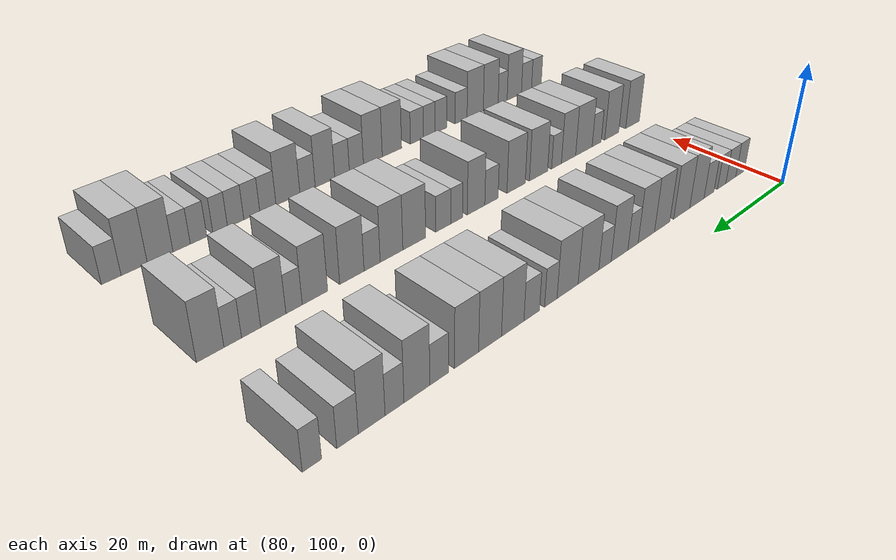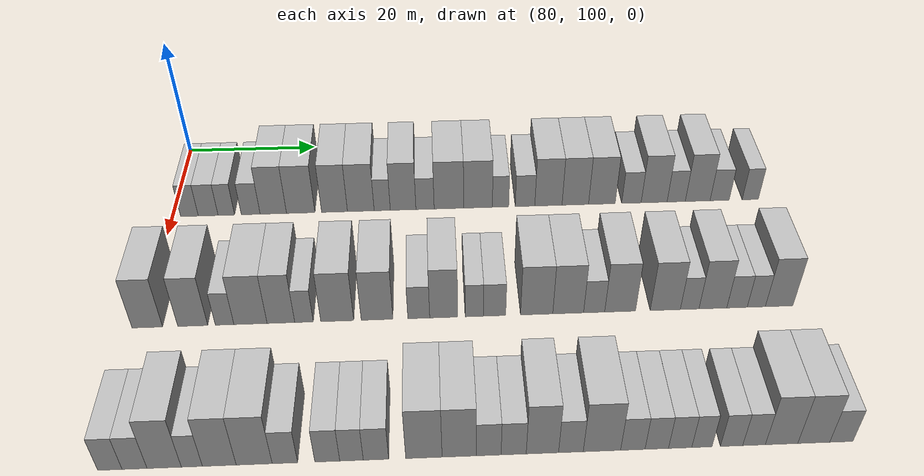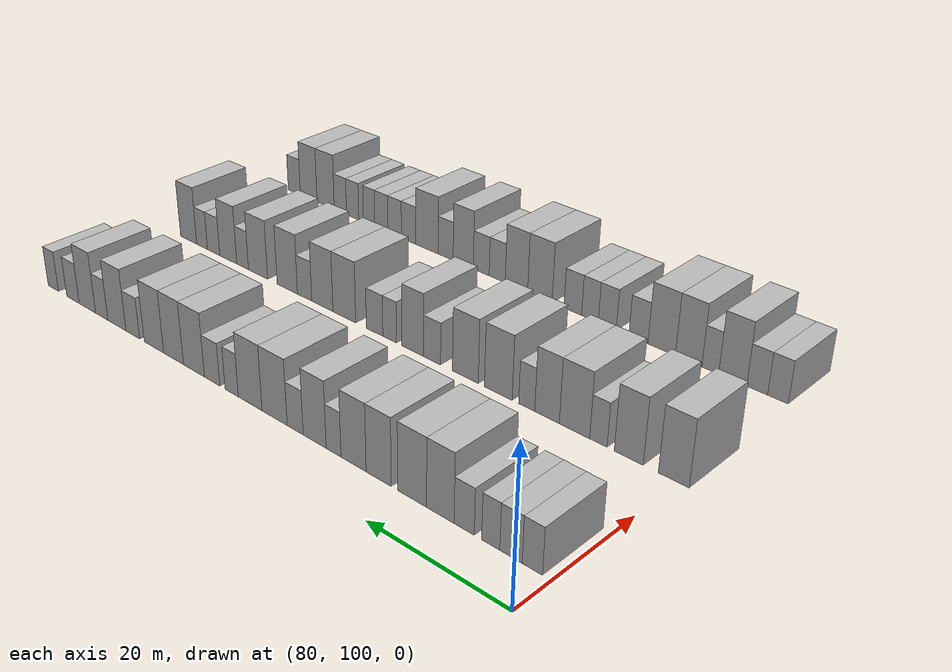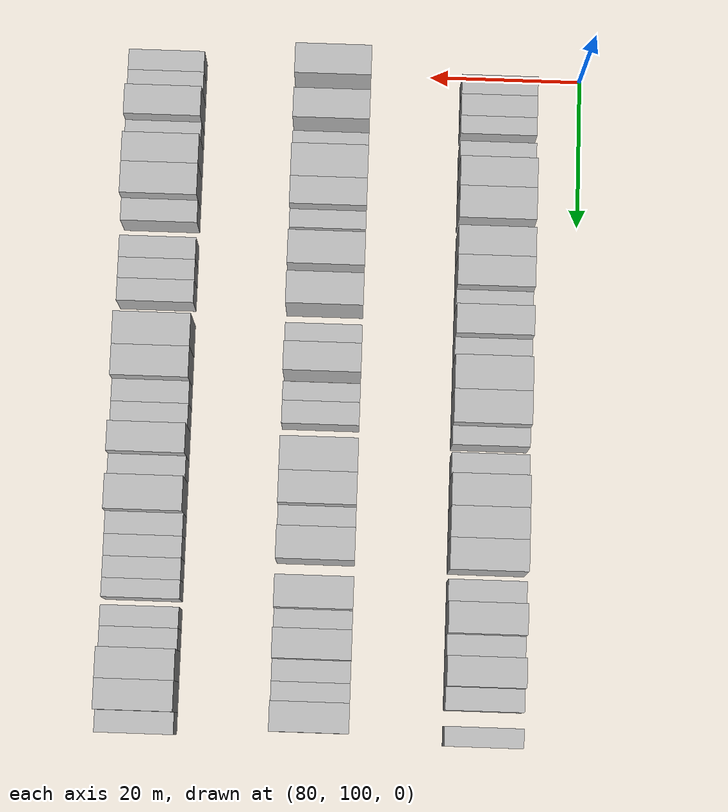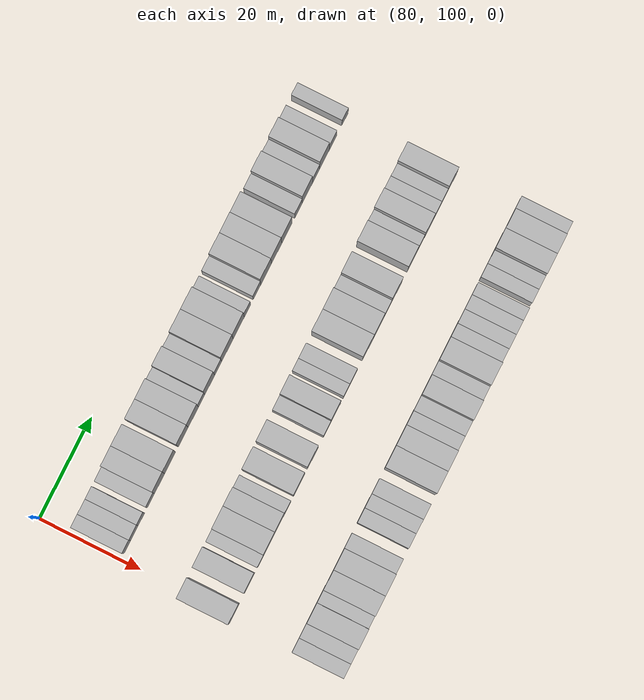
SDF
<sdf version="1.6">
 <world name="default">
  <model name="building_700">
   <static>1</static>
   <pose>91.0000 102.5104 0 0.000000 0.000000 0.000000</pose>
   <link name="link">
    <pose>0 0 3.00 0 0 0</pose>
    <collision name="collision"><geometry><box><size>10.0000 2.6160 6.0000</size></box></geometry></collision>
    <visual name="visual">
     <cast_shadows>0</cast_shadows>
     <geometry><box><size>10.0000 2.6160 6.0000</size></box></geometry>
     <material>
      <script>
       <uri>model://HANNAS_wall/materials/scripts</uri>
       <uri>model://HANNAS_wall/materials/textures</uri>
       <name>vrc/HANNAS_wall</name>
      </script>
     </material>
    </visual>
   </link>
  </model>
  <model name="building_701">
   <static>1</static>
   <pose>91.0000 105.2872 0 0.000000 0.000000 0.000000</pose>
   <link name="link">
    <pose>0 0 3.00 0 0 0</pose>
    <collision name="collision"><geometry><box><size>10.0000 2.9376 6.0000</size></box></geometry></collision>
    <visual name="visual">
     <cast_shadows>0</cast_shadows>
     <geometry><box><size>10.0000 2.9376 6.0000</size></box></geometry>
     <material>
      <script>
       <uri>model://HANNAS_wall/materials/scripts</uri>
       <uri>model://HANNAS_wall/materials/textures</uri>
       <name>vrc/HANNAS_wall</name>
      </script>
     </material>
    </visual>
   </link>
  </model>
  <model name="building_702">
   <static>1</static>
   <pose>91.0000 107.9798 0 0.000000 0.000000 0.000000</pose>
   <link name="link">
    <pose>0 0 3.00 0 0 0</pose>
    <collision name="collision"><geometry><box><size>10.0000 2.4476 6.0000</size></box></geometry></collision>
    <visual name="visual">
     <cast_shadows>0</cast_shadows>
     <geometry><box><size>10.0000 2.4476 6.0000</size></box></geometry>
     <material>
      <script>
       <uri>model://HANNAS_wall/materials/scripts</uri>
       <uri>model://HANNAS_wall/materials/textures</uri>
       <name>vrc/HANNAS_wall</name>
      </script>
     </material>
    </visual>
   </link>
  </model>
  <model name="building_703">
   <static>1</static>
   <pose>91.0000 111.6067 0 0.000000 0.000000 0.000000</pose>
   <link name="link">
    <pose>0 0 3.00 0 0 0</pose>
    <collision name="collision"><geometry><box><size>10.0000 2.8062 6.0000</size></box></geometry></collision>
    <visual name="visual">
     <cast_shadows>0</cast_shadows>
     <geometry><box><size>10.0000 2.8062 6.0000</size></box></geometry>
     <material>
      <script>
       <uri>model://HANNAS_wall/materials/scripts</uri>
       <uri>model://HANNAS_wall/materials/textures</uri>
       <name>vrc/HANNAS_wall</name>
      </script>
     </material>
    </visual>
   </link>
  </model>
  <model name="building_704">
   <static>1</static>
   <pose>91.0000 114.9770 0 0.000000 0.000000 0.000000</pose>
   <link name="link">
    <pose>0 0 4.50 0 0 0</pose>
    <collision name="collision"><geometry><box><size>10.0000 3.9344 9.0000</size></box></geometry></collision>
    <visual name="visual">
     <cast_shadows>0</cast_shadows>
     <geometry><box><size>10.0000 3.9344 9.0000</size></box></geometry>
     <material>
      <script>
       <uri>model://HANNAS_wall/materials/scripts</uri>
       <uri>model://HANNAS_wall/materials/textures</uri>
       <name>vrc/HANNAS_wall</name>
      </script>
     </material>
    </visual>
   </link>
  </model>
  <model name="building_705">
   <static>1</static>
   <pose>91.0000 119.0649 0 0.000000 0.000000 0.000000</pose>
   <link name="link">
    <pose>0 0 4.50 0 0 0</pose>
    <collision name="collision"><geometry><box><size>10.0000 4.2413 9.0000</size></box></geometry></collision>
    <visual name="visual">
     <cast_shadows>0</cast_shadows>
     <geometry><box><size>10.0000 4.2413 9.0000</size></box></geometry>
     <material>
      <script>
       <uri>model://HANNAS_wall/materials/scripts</uri>
       <uri>model://HANNAS_wall/materials/textures</uri>
       <name>vrc/HANNAS_wall</name>
      </script>
     </material>
    </visual>
   </link>
  </model>
  <model name="building_706">
   <static>1</static>
   <pose>91.0000 124.1205 0 0.000000 0.000000 0.000000</pose>
   <link name="link">
    <pose>0 0 4.50 0 0 0</pose>
    <collision name="collision"><geometry><box><size>10.0000 3.8699 9.0000</size></box></geometry></collision>
    <visual name="visual">
     <cast_shadows>0</cast_shadows>
     <geometry><box><size>10.0000 3.8699 9.0000</size></box></geometry>
     <material>
      <script>
       <uri>model://HANNAS_wall/materials/scripts</uri>
       <uri>model://HANNAS_wall/materials/textures</uri>
       <name>vrc/HANNAS_wall</name>
      </script>
     </material>
    </visual>
   </link>
  </model>
  <model name="building_707">
   <static>1</static>
   <pose>91.0000 128.0559 0 0.000000 0.000000 0.000000</pose>
   <link name="link">
    <pose>0 0 4.50 0 0 0</pose>
    <collision name="collision"><geometry><box><size>10.0000 4.0009 9.0000</size></box></geometry></collision>
    <visual name="visual">
     <cast_shadows>0</cast_shadows>
     <geometry><box><size>10.0000 4.0009 9.0000</size></box></geometry>
     <material>
      <script>
       <uri>model://HANNAS_wall/materials/scripts</uri>
       <uri>model://HANNAS_wall/materials/textures</uri>
       <name>vrc/HANNAS_wall</name>
      </script>
     </material>
    </visual>
   </link>
  </model>
  <model name="building_708">
   <static>1</static>
   <pose>91.0000 131.2698 0 0.000000 0.000000 0.000000</pose>
   <link name="link">
    <pose>0 0 3.00 0 0 0</pose>
    <collision name="collision"><geometry><box><size>10.0000 2.4270 6.0000</size></box></geometry></collision>
    <visual name="visual">
     <cast_shadows>0</cast_shadows>
     <geometry><box><size>10.0000 2.4270 6.0000</size></box></geometry>
     <material>
      <script>
       <uri>model://HANNAS_wall/materials/scripts</uri>
       <uri>model://HANNAS_wall/materials/textures</uri>
       <name>vrc/HANNAS_wall</name>
      </script>
     </material>
    </visual>
   </link>
  </model>
  <model name="building_709">
   <static>1</static>
   <pose>91.0000 134.4091 0 0.000000 0.000000 0.000000</pose>
   <link name="link">
    <pose>0 0 4.50 0 0 0</pose>
    <collision name="collision"><geometry><box><size>10.0000 3.8515 9.0000</size></box></geometry></collision>
    <visual name="visual">
     <cast_shadows>0</cast_shadows>
     <geometry><box><size>10.0000 3.8515 9.0000</size></box></geometry>
     <material>
      <script>
       <uri>model://HANNAS_wall/materials/scripts</uri>
       <uri>model://HANNAS_wall/materials/textures</uri>
       <name>vrc/HANNAS_wall</name>
      </script>
     </material>
    </visual>
   </link>
  </model>
  <model name="building_710">
   <static>1</static>
   <pose>91.0000 137.7074 0 0.000000 0.000000 0.000000</pose>
   <link name="link">
    <pose>0 0 3.00 0 0 0</pose>
    <collision name="collision"><geometry><box><size>10.0000 2.7451 6.0000</size></box></geometry></collision>
    <visual name="visual">
     <cast_shadows>0</cast_shadows>
     <geometry><box><size>10.0000 2.7451 6.0000</size></box></geometry>
     <material>
      <script>
       <uri>model://HANNAS_wall/materials/scripts</uri>
       <uri>model://HANNAS_wall/materials/textures</uri>
       <name>vrc/HANNAS_wall</name>
      </script>
     </material>
    </visual>
   </link>
  </model>
  <model name="building_711">
   <static>1</static>
   <pose>91.0000 141.3026 0 0.000000 0.000000 0.000000</pose>
   <link name="link">
    <pose>0 0 4.50 0 0 0</pose>
    <collision name="collision"><geometry><box><size>10.0000 4.4453 9.0000</size></box></geometry></collision>
    <visual name="visual">
     <cast_shadows>0</cast_shadows>
     <geometry><box><size>10.0000 4.4453 9.0000</size></box></geometry>
     <material>
      <script>
       <uri>model://HANNAS_wall/materials/scripts</uri>
       <uri>model://HANNAS_wall/materials/textures</uri>
       <name>vrc/HANNAS_wall</name>
      </script>
     </material>
    </visual>
   </link>
  </model>
  <model name="building_712">
   <static>1</static>
   <pose>91.0000 145.6938 0 0.000000 0.000000 0.000000</pose>
   <link name="link">
    <pose>0 0 4.50 0 0 0</pose>
    <collision name="collision"><geometry><box><size>10.0000 4.3371 9.0000</size></box></geometry></collision>
    <visual name="visual">
     <cast_shadows>0</cast_shadows>
     <geometry><box><size>10.0000 4.3371 9.0000</size></box></geometry>
     <material>
      <script>
       <uri>model://HANNAS_wall/materials/scripts</uri>
       <uri>model://HANNAS_wall/materials/textures</uri>
       <name>vrc/HANNAS_wall</name>
      </script>
     </material>
    </visual>
   </link>
  </model>
  <model name="building_713">
   <static>1</static>
   <pose>91.0000 149.0983 0 0.000000 0.000000 0.000000</pose>
   <link name="link">
    <pose>0 0 3.00 0 0 0</pose>
    <collision name="collision"><geometry><box><size>10.0000 2.4720 6.0000</size></box></geometry></collision>
    <visual name="visual">
     <cast_shadows>0</cast_shadows>
     <geometry><box><size>10.0000 2.4720 6.0000</size></box></geometry>
     <material>
      <script>
       <uri>model://HANNAS_wall/materials/scripts</uri>
       <uri>model://HANNAS_wall/materials/textures</uri>
       <name>vrc/HANNAS_wall</name>
      </script>
     </material>
    </visual>
   </link>
  </model>
  <model name="building_714">
   <static>1</static>
   <pose>91.0000 152.8132 0 0.000000 0.000000 0.000000</pose>
   <link name="link">
    <pose>0 0 3.00 0 0 0</pose>
    <collision name="collision"><geometry><box><size>10.0000 2.9578 6.0000</size></box></geometry></collision>
    <visual name="visual">
     <cast_shadows>0</cast_shadows>
     <geometry><box><size>10.0000 2.9578 6.0000</size></box></geometry>
     <material>
      <script>
       <uri>model://HANNAS_wall/materials/scripts</uri>
       <uri>model://HANNAS_wall/materials/textures</uri>
       <name>vrc/HANNAS_wall</name>
      </script>
     </material>
    </visual>
   </link>
  </model>
  <model name="building_715">
   <static>1</static>
   <pose>91.0000 156.3611 0 0.000000 0.000000 0.000000</pose>
   <link name="link">
    <pose>0 0 4.50 0 0 0</pose>
    <collision name="collision"><geometry><box><size>10.0000 4.1379 9.0000</size></box></geometry></collision>
    <visual name="visual">
     <cast_shadows>0</cast_shadows>
     <geometry><box><size>10.0000 4.1379 9.0000</size></box></geometry>
     <material>
      <script>
       <uri>model://HANNAS_wall/materials/scripts</uri>
       <uri>model://HANNAS_wall/materials/textures</uri>
       <name>vrc/HANNAS_wall</name>
      </script>
     </material>
    </visual>
   </link>
  </model>
  <model name="building_716">
   <static>1</static>
   <pose>91.0000 160.4468 0 0.000000 0.000000 0.000000</pose>
   <link name="link">
    <pose>0 0 4.50 0 0 0</pose>
    <collision name="collision"><geometry><box><size>10.0000 4.0335 9.0000</size></box></geometry></collision>
    <visual name="visual">
     <cast_shadows>0</cast_shadows>
     <geometry><box><size>10.0000 4.0335 9.0000</size></box></geometry>
     <material>
      <script>
       <uri>model://HANNAS_wall/materials/scripts</uri>
       <uri>model://HANNAS_wall/materials/textures</uri>
       <name>vrc/HANNAS_wall</name>
      </script>
     </material>
    </visual>
   </link>
  </model>
  <model name="building_717">
   <static>1</static>
   <pose>91.0000 164.4936 0 0.000000 0.000000 0.000000</pose>
   <link name="link">
    <pose>0 0 4.50 0 0 0</pose>
    <collision name="collision"><geometry><box><size>10.0000 4.0601 9.0000</size></box></geometry></collision>
    <visual name="visual">
     <cast_shadows>0</cast_shadows>
     <geometry><box><size>10.0000 4.0601 9.0000</size></box></geometry>
     <material>
      <script>
       <uri>model://HANNAS_wall/materials/scripts</uri>
       <uri>model://HANNAS_wall/materials/textures</uri>
       <name>vrc/HANNAS_wall</name>
      </script>
     </material>
    </visual>
   </link>
  </model>
  <model name="building_718">
   <static>1</static>
   <pose>91.0000 169.0060 0 0.000000 0.000000 0.000000</pose>
   <link name="link">
    <pose>0 0 3.00 0 0 0</pose>
    <collision name="collision"><geometry><box><size>10.0000 2.9647 6.0000</size></box></geometry></collision>
    <visual name="visual">
     <cast_shadows>0</cast_shadows>
     <geometry><box><size>10.0000 2.9647 6.0000</size></box></geometry>
     <material>
      <script>
       <uri>model://HANNAS_wall/materials/scripts</uri>
       <uri>model://HANNAS_wall/materials/textures</uri>
       <name>vrc/HANNAS_wall</name>
      </script>
     </material>
    </visual>
   </link>
  </model>
  <model name="building_719">
   <static>1</static>
   <pose>91.0000 172.4766 0 0.000000 0.000000 0.000000</pose>
   <link name="link">
    <pose>0 0 4.50 0 0 0</pose>
    <collision name="collision"><geometry><box><size>10.0000 3.9765 9.0000</size></box></geometry></collision>
    <visual name="visual">
     <cast_shadows>0</cast_shadows>
     <geometry><box><size>10.0000 3.9765 9.0000</size></box></geometry>
     <material>
      <script>
       <uri>model://HANNAS_wall/materials/scripts</uri>
       <uri>model://HANNAS_wall/materials/textures</uri>
       <name>vrc/HANNAS_wall</name>
      </script>
     </material>
    </visual>
   </link>
  </model>
  <model name="building_720">
   <static>1</static>
   <pose>91.0000 175.8605 0 0.000000 0.000000 0.000000</pose>
   <link name="link">
    <pose>0 0 3.00 0 0 0</pose>
    <collision name="collision"><geometry><box><size>10.0000 2.7915 6.0000</size></box></geometry></collision>
    <visual name="visual">
     <cast_shadows>0</cast_shadows>
     <geometry><box><size>10.0000 2.7915 6.0000</size></box></geometry>
     <material>
      <script>
       <uri>model://HANNAS_wall/materials/scripts</uri>
       <uri>model://HANNAS_wall/materials/textures</uri>
       <name>vrc/HANNAS_wall</name>
      </script>
     </material>
    </visual>
   </link>
  </model>
  <model name="building_721">
   <static>1</static>
   <pose>91.0000 179.1564 0 0.000000 0.000000 0.000000</pose>
   <link name="link">
    <pose>0 0 4.50 0 0 0</pose>
    <collision name="collision"><geometry><box><size>10.0000 3.8003 9.0000</size></box></geometry></collision>
    <visual name="visual">
     <cast_shadows>0</cast_shadows>
     <geometry><box><size>10.0000 3.8003 9.0000</size></box></geometry>
     <material>
      <script>
       <uri>model://HANNAS_wall/materials/scripts</uri>
       <uri>model://HANNAS_wall/materials/textures</uri>
       <name>vrc/HANNAS_wall</name>
      </script>
     </material>
    </visual>
   </link>
  </model>
  <model name="building_722">
   <static>1</static>
   <pose>91.0000 182.5266 0 0.000000 0.000000 0.000000</pose>
   <link name="link">
    <pose>0 0 3.00 0 0 0</pose>
    <collision name="collision"><geometry><box><size>10.0000 2.9400 6.0000</size></box></geometry></collision>
    <visual name="visual">
     <cast_shadows>0</cast_shadows>
     <geometry><box><size>10.0000 2.9400 6.0000</size></box></geometry>
     <material>
      <script>
       <uri>model://HANNAS_wall/materials/scripts</uri>
       <uri>model://HANNAS_wall/materials/textures</uri>
       <name>vrc/HANNAS_wall</name>
      </script>
     </material>
    </visual>
   </link>
  </model>
  <model name="building_723">
   <static>1</static>
   <pose>91.0000 187.2412 0 0.000000 0.000000 0.000000</pose>
   <link name="link">
    <pose>0 0 3.00 0 0 0</pose>
    <collision name="collision"><geometry><box><size>10.0000 2.4893 6.0000</size></box></geometry></collision>
    <visual name="visual">
     <cast_shadows>0</cast_shadows>
     <geometry><box><size>10.0000 2.4893 6.0000</size></box></geometry>
     <material>
      <script>
       <uri>model://HANNAS_wall/materials/scripts</uri>
       <uri>model://HANNAS_wall/materials/textures</uri>
       <name>vrc/HANNAS_wall</name>
      </script>
     </material>
    </visual>
   </link>
  </model>
  <model name="building_892">
   <static>1</static>
   <pose>113.0000 100.6178 0 0.000000 0.000000 0.000000</pose>
   <link name="link">
    <pose>0 0 4.50 0 0 0</pose>
    <collision name="collision"><geometry><box><size>10.0000 4.0239 9.0000</size></box></geometry></collision>
    <visual name="visual">
     <cast_shadows>0</cast_shadows>
     <geometry><box><size>10.0000 4.0239 9.0000</size></box></geometry>
     <material>
      <script>
       <uri>model://HANNAS_wall/materials/scripts</uri>
       <uri>model://HANNAS_wall/materials/textures</uri>
       <name>vrc/HANNAS_wall</name>
      </script>
     </material>
    </visual>
   </link>
  </model>
  <model name="building_893">
   <static>1</static>
   <pose>113.0000 106.6048 0 0.000000 0.000000 0.000000</pose>
   <link name="link">
    <pose>0 0 4.50 0 0 0</pose>
    <collision name="collision"><geometry><box><size>10.0000 3.9501 9.0000</size></box></geometry></collision>
    <visual name="visual">
     <cast_shadows>0</cast_shadows>
     <geometry><box><size>10.0000 3.9501 9.0000</size></box></geometry>
     <material>
      <script>
       <uri>model://HANNAS_wall/materials/scripts</uri>
       <uri>model://HANNAS_wall/materials/textures</uri>
       <name>vrc/HANNAS_wall</name>
      </script>
     </material>
    </visual>
   </link>
  </model>
  <model name="building_894">
   <static>1</static>
   <pose>113.0000 110.8086 0 0.000000 0.000000 0.000000</pose>
   <link name="link">
    <pose>0 0 3.00 0 0 0</pose>
    <collision name="collision"><geometry><box><size>10.0000 2.4576 6.0000</size></box></geometry></collision>
    <visual name="visual">
     <cast_shadows>0</cast_shadows>
     <geometry><box><size>10.0000 2.4576 6.0000</size></box></geometry>
     <material>
      <script>
       <uri>model://HANNAS_wall/materials/scripts</uri>
       <uri>model://HANNAS_wall/materials/textures</uri>
       <name>vrc/HANNAS_wall</name>
      </script>
     </material>
    </visual>
   </link>
  </model>
  <model name="building_895">
   <static>1</static>
   <pose>113.0000 114.2352 0 0.000000 0.000000 0.000000</pose>
   <link name="link">
    <pose>0 0 4.50 0 0 0</pose>
    <collision name="collision"><geometry><box><size>10.0000 4.3956 9.0000</size></box></geometry></collision>
    <visual name="visual">
     <cast_shadows>0</cast_shadows>
     <geometry><box><size>10.0000 4.3956 9.0000</size></box></geometry>
     <material>
      <script>
       <uri>model://HANNAS_wall/materials/scripts</uri>
       <uri>model://HANNAS_wall/materials/textures</uri>
       <name>vrc/HANNAS_wall</name>
      </script>
     </material>
    </visual>
   </link>
  </model>
  <model name="building_896">
   <static>1</static>
   <pose>113.0000 118.2687 0 0.000000 0.000000 0.000000</pose>
   <link name="link">
    <pose>0 0 4.50 0 0 0</pose>
    <collision name="collision"><geometry><box><size>10.0000 3.6714 9.0000</size></box></geometry></collision>
    <visual name="visual">
     <cast_shadows>0</cast_shadows>
     <geometry><box><size>10.0000 3.6714 9.0000</size></box></geometry>
     <material>
      <script>
       <uri>model://HANNAS_wall/materials/scripts</uri>
       <uri>model://HANNAS_wall/materials/textures</uri>
       <name>vrc/HANNAS_wall</name>
      </script>
     </material>
    </visual>
   </link>
  </model>
  <model name="building_897">
   <static>1</static>
   <pose>113.0000 121.3330 0 0.000000 0.000000 0.000000</pose>
   <link name="link">
    <pose>0 0 3.00 0 0 0</pose>
    <collision name="collision"><geometry><box><size>10.0000 2.4572 6.0000</size></box></geometry></collision>
    <visual name="visual">
     <cast_shadows>0</cast_shadows>
     <geometry><box><size>10.0000 2.4572 6.0000</size></box></geometry>
     <material>
      <script>
       <uri>model://HANNAS_wall/materials/scripts</uri>
       <uri>model://HANNAS_wall/materials/textures</uri>
       <name>vrc/HANNAS_wall</name>
      </script>
     </material>
    </visual>
   </link>
  </model>
  <model name="building_898">
   <static>1</static>
   <pose>113.0000 125.7563 0 0.000000 0.000000 0.000000</pose>
   <link name="link">
    <pose>0 0 4.50 0 0 0</pose>
    <collision name="collision"><geometry><box><size>10.0000 4.3894 9.0000</size></box></geometry></collision>
    <visual name="visual">
     <cast_shadows>0</cast_shadows>
     <geometry><box><size>10.0000 4.3894 9.0000</size></box></geometry>
     <material>
      <script>
       <uri>model://HANNAS_wall/materials/scripts</uri>
       <uri>model://HANNAS_wall/materials/textures</uri>
       <name>vrc/HANNAS_wall</name>
      </script>
     </material>
    </visual>
   </link>
  </model>
  <model name="building_899">
   <static>1</static>
   <pose>113.0000 131.0678 0 0.000000 0.000000 0.000000</pose>
   <link name="link">
    <pose>0 0 4.50 0 0 0</pose>
    <collision name="collision"><geometry><box><size>10.0000 4.2336 9.0000</size></box></geometry></collision>
    <visual name="visual">
     <cast_shadows>0</cast_shadows>
     <geometry><box><size>10.0000 4.2336 9.0000</size></box></geometry>
     <material>
      <script>
       <uri>model://HANNAS_wall/materials/scripts</uri>
       <uri>model://HANNAS_wall/materials/textures</uri>
       <name>vrc/HANNAS_wall</name>
      </script>
     </material>
    </visual>
   </link>
  </model>
  <model name="building_900">
   <static>1</static>
   <pose>113.0000 136.6480 0 0.000000 0.000000 0.000000</pose>
   <link name="link">
    <pose>0 0 3.00 0 0 0</pose>
    <collision name="collision"><geometry><box><size>10.0000 2.9268 6.0000</size></box></geometry></collision>
    <visual name="visual">
     <cast_shadows>0</cast_shadows>
     <geometry><box><size>10.0000 2.9268 6.0000</size></box></geometry>
     <material>
      <script>
       <uri>model://HANNAS_wall/materials/scripts</uri>
       <uri>model://HANNAS_wall/materials/textures</uri>
       <name>vrc/HANNAS_wall</name>
      </script>
     </material>
    </visual>
   </link>
  </model>
  <model name="building_901">
   <static>1</static>
   <pose>113.0000 139.9921 0 0.000000 0.000000 0.000000</pose>
   <link name="link">
    <pose>0 0 4.50 0 0 0</pose>
    <collision name="collision"><geometry><box><size>10.0000 3.7613 9.0000</size></box></geometry></collision>
    <visual name="visual">
     <cast_shadows>0</cast_shadows>
     <geometry><box><size>10.0000 3.7613 9.0000</size></box></geometry>
     <material>
      <script>
       <uri>model://HANNAS_wall/materials/scripts</uri>
       <uri>model://HANNAS_wall/materials/textures</uri>
       <name>vrc/HANNAS_wall</name>
      </script>
     </material>
    </visual>
   </link>
  </model>
  <model name="building_902">
   <static>1</static>
   <pose>113.0000 144.0964 0 0.000000 0.000000 0.000000</pose>
   <link name="link">
    <pose>0 0 3.00 0 0 0</pose>
    <collision name="collision"><geometry><box><size>10.0000 2.4473 6.0000</size></box></geometry></collision>
    <visual name="visual">
     <cast_shadows>0</cast_shadows>
     <geometry><box><size>10.0000 2.4473 6.0000</size></box></geometry>
     <material>
      <script>
       <uri>model://HANNAS_wall/materials/scripts</uri>
       <uri>model://HANNAS_wall/materials/textures</uri>
       <name>vrc/HANNAS_wall</name>
      </script>
     </material>
    </visual>
   </link>
  </model>
  <model name="building_903">
   <static>1</static>
   <pose>113.0000 146.8193 0 0.000000 0.000000 0.000000</pose>
   <link name="link">
    <pose>0 0 3.00 0 0 0</pose>
    <collision name="collision"><geometry><box><size>10.0000 2.9987 6.0000</size></box></geometry></collision>
    <visual name="visual">
     <cast_shadows>0</cast_shadows>
     <geometry><box><size>10.0000 2.9987 6.0000</size></box></geometry>
     <material>
      <script>
       <uri>model://HANNAS_wall/materials/scripts</uri>
       <uri>model://HANNAS_wall/materials/textures</uri>
       <name>vrc/HANNAS_wall</name>
      </script>
     </material>
    </visual>
   </link>
  </model>
  <model name="building_904">
   <static>1</static>
   <pose>113.0000 152.4962 0 0.000000 0.000000 0.000000</pose>
   <link name="link">
    <pose>0 0 4.50 0 0 0</pose>
    <collision name="collision"><geometry><box><size>10.0000 4.3550 9.0000</size></box></geometry></collision>
    <visual name="visual">
     <cast_shadows>0</cast_shadows>
     <geometry><box><size>10.0000 4.3550 9.0000</size></box></geometry>
     <material>
      <script>
       <uri>model://HANNAS_wall/materials/scripts</uri>
       <uri>model://HANNAS_wall/materials/textures</uri>
       <name>vrc/HANNAS_wall</name>
      </script>
     </material>
    </visual>
   </link>
  </model>
  <model name="building_905">
   <static>1</static>
   <pose>113.0000 156.7583 0 0.000000 0.000000 0.000000</pose>
   <link name="link">
    <pose>0 0 4.50 0 0 0</pose>
    <collision name="collision"><geometry><box><size>10.0000 4.1692 9.0000</size></box></geometry></collision>
    <visual name="visual">
     <cast_shadows>0</cast_shadows>
     <geometry><box><size>10.0000 4.1692 9.0000</size></box></geometry>
     <material>
      <script>
       <uri>model://HANNAS_wall/materials/scripts</uri>
       <uri>model://HANNAS_wall/materials/textures</uri>
       <name>vrc/HANNAS_wall</name>
      </script>
     </material>
    </visual>
   </link>
  </model>
  <model name="building_906">
   <static>1</static>
   <pose>113.0000 160.2722 0 0.000000 0.000000 0.000000</pose>
   <link name="link">
    <pose>0 0 3.00 0 0 0</pose>
    <collision name="collision"><geometry><box><size>10.0000 2.8585 6.0000</size></box></geometry></collision>
    <visual name="visual">
     <cast_shadows>0</cast_shadows>
     <geometry><box><size>10.0000 2.8585 6.0000</size></box></geometry>
     <material>
      <script>
       <uri>model://HANNAS_wall/materials/scripts</uri>
       <uri>model://HANNAS_wall/materials/textures</uri>
       <name>vrc/HANNAS_wall</name>
      </script>
     </material>
    </visual>
   </link>
  </model>
  <model name="building_907">
   <static>1</static>
   <pose>113.0000 163.7938 0 0.000000 0.000000 0.000000</pose>
   <link name="link">
    <pose>0 0 4.50 0 0 0</pose>
    <collision name="collision"><geometry><box><size>10.0000 4.1848 9.0000</size></box></geometry></collision>
    <visual name="visual">
     <cast_shadows>0</cast_shadows>
     <geometry><box><size>10.0000 4.1848 9.0000</size></box></geometry>
     <material>
      <script>
       <uri>model://HANNAS_wall/materials/scripts</uri>
       <uri>model://HANNAS_wall/materials/textures</uri>
       <name>vrc/HANNAS_wall</name>
      </script>
     </material>
    </visual>
   </link>
  </model>
  <model name="building_908">
   <static>1</static>
   <pose>113.0000 169.9389 0 0.000000 0.000000 0.000000</pose>
   <link name="link">
    <pose>0 0 4.50 0 0 0</pose>
    <collision name="collision"><geometry><box><size>10.0000 4.1054 9.0000</size></box></geometry></collision>
    <visual name="visual">
     <cast_shadows>0</cast_shadows>
     <geometry><box><size>10.0000 4.1054 9.0000</size></box></geometry>
     <material>
      <script>
       <uri>model://HANNAS_wall/materials/scripts</uri>
       <uri>model://HANNAS_wall/materials/textures</uri>
       <name>vrc/HANNAS_wall</name>
      </script>
     </material>
    </visual>
   </link>
  </model>
  <model name="building_909">
   <static>1</static>
   <pose>113.0000 173.2634 0 0.000000 0.000000 0.000000</pose>
   <link name="link">
    <pose>0 0 3.00 0 0 0</pose>
    <collision name="collision"><geometry><box><size>10.0000 2.5436 6.0000</size></box></geometry></collision>
    <visual name="visual">
     <cast_shadows>0</cast_shadows>
     <geometry><box><size>10.0000 2.5436 6.0000</size></box></geometry>
     <material>
      <script>
       <uri>model://HANNAS_wall/materials/scripts</uri>
       <uri>model://HANNAS_wall/materials/textures</uri>
       <name>vrc/HANNAS_wall</name>
      </script>
     </material>
    </visual>
   </link>
  </model>
  <model name="building_910">
   <static>1</static>
   <pose>113.0000 176.4371 0 0.000000 0.000000 0.000000</pose>
   <link name="link">
    <pose>0 0 4.50 0 0 0</pose>
    <collision name="collision"><geometry><box><size>10.0000 3.8039 9.0000</size></box></geometry></collision>
    <visual name="visual">
     <cast_shadows>0</cast_shadows>
     <geometry><box><size>10.0000 3.8039 9.0000</size></box></geometry>
     <material>
      <script>
       <uri>model://HANNAS_wall/materials/scripts</uri>
       <uri>model://HANNAS_wall/materials/textures</uri>
       <name>vrc/HANNAS_wall</name>
      </script>
     </material>
    </visual>
   </link>
  </model>
  <model name="building_911">
   <static>1</static>
   <pose>113.0000 179.7352 0 0.000000 0.000000 0.000000</pose>
   <link name="link">
    <pose>0 0 3.00 0 0 0</pose>
    <collision name="collision"><geometry><box><size>10.0000 2.7922 6.0000</size></box></geometry></collision>
    <visual name="visual">
     <cast_shadows>0</cast_shadows>
     <geometry><box><size>10.0000 2.7922 6.0000</size></box></geometry>
     <material>
      <script>
       <uri>model://HANNAS_wall/materials/scripts</uri>
       <uri>model://HANNAS_wall/materials/textures</uri>
       <name>vrc/HANNAS_wall</name>
      </script>
     </material>
    </visual>
   </link>
  </model>
  <model name="building_912">
   <static>1</static>
   <pose>113.0000 182.3738 0 0.000000 0.000000 0.000000</pose>
   <link name="link">
    <pose>0 0 3.00 0 0 0</pose>
    <collision name="collision"><geometry><box><size>10.0000 2.4850 6.0000</size></box></geometry></collision>
    <visual name="visual">
     <cast_shadows>0</cast_shadows>
     <geometry><box><size>10.0000 2.4850 6.0000</size></box></geometry>
     <material>
      <script>
       <uri>model://HANNAS_wall/materials/scripts</uri>
       <uri>model://HANNAS_wall/materials/textures</uri>
       <name>vrc/HANNAS_wall</name>
      </script>
     </material>
    </visual>
   </link>
  </model>
  <model name="building_913">
   <static>1</static>
   <pose>113.0000 185.5115 0 0.000000 0.000000 0.000000</pose>
   <link name="link">
    <pose>0 0 4.50 0 0 0</pose>
    <collision name="collision"><geometry><box><size>10.0000 3.7905 9.0000</size></box></geometry></collision>
    <visual name="visual">
     <cast_shadows>0</cast_shadows>
     <geometry><box><size>10.0000 3.7905 9.0000</size></box></geometry>
     <material>
      <script>
       <uri>model://HANNAS_wall/materials/scripts</uri>
       <uri>model://HANNAS_wall/materials/textures</uri>
       <name>vrc/HANNAS_wall</name>
      </script>
     </material>
    </visual>
   </link>
  </model>
  <model name="building_1079">
   <static>1</static>
   <pose>135.0000 100.6549 0 0.000000 0.000000 0.000000</pose>
   <link name="link">
    <pose>0 0 3.00 0 0 0</pose>
    <collision name="collision"><geometry><box><size>10.0000 2.7953 6.0000</size></box></geometry></collision>
    <visual name="visual">
     <cast_shadows>0</cast_shadows>
     <geometry><box><size>10.0000 2.7953 6.0000</size></box></geometry>
     <material>
      <script>
       <uri>model://HANNAS_wall/materials/scripts</uri>
       <uri>model://HANNAS_wall/materials/textures</uri>
       <name>vrc/HANNAS_wall</name>
      </script>
     </material>
    </visual>
   </link>
  </model>
  <model name="building_1080">
   <static>1</static>
   <pose>135.0000 103.4917 0 0.000000 0.000000 0.000000</pose>
   <link name="link">
    <pose>0 0 3.00 0 0 0</pose>
    <collision name="collision"><geometry><box><size>10.0000 2.8784 6.0000</size></box></geometry></collision>
    <visual name="visual">
     <cast_shadows>0</cast_shadows>
     <geometry><box><size>10.0000 2.8784 6.0000</size></box></geometry>
     <material>
      <script>
       <uri>model://HANNAS_wall/materials/scripts</uri>
       <uri>model://HANNAS_wall/materials/textures</uri>
       <name>vrc/HANNAS_wall</name>
      </script>
     </material>
    </visual>
   </link>
  </model>
  <model name="building_1081">
   <static>1</static>
   <pose>135.0000 106.9094 0 0.000000 0.000000 0.000000</pose>
   <link name="link">
    <pose>0 0 4.50 0 0 0</pose>
    <collision name="collision"><geometry><box><size>10.0000 3.9570 9.0000</size></box></geometry></collision>
    <visual name="visual">
     <cast_shadows>0</cast_shadows>
     <geometry><box><size>10.0000 3.9570 9.0000</size></box></geometry>
     <material>
      <script>
       <uri>model://HANNAS_wall/materials/scripts</uri>
       <uri>model://HANNAS_wall/materials/textures</uri>
       <name>vrc/HANNAS_wall</name>
      </script>
     </material>
    </visual>
   </link>
  </model>
  <model name="building_1082">
   <static>1</static>
   <pose>135.0000 110.1060 0 0.000000 0.000000 0.000000</pose>
   <link name="link">
    <pose>0 0 3.00 0 0 0</pose>
    <collision name="collision"><geometry><box><size>10.0000 2.4362 6.0000</size></box></geometry></collision>
    <visual name="visual">
     <cast_shadows>0</cast_shadows>
     <geometry><box><size>10.0000 2.4362 6.0000</size></box></geometry>
     <material>
      <script>
       <uri>model://HANNAS_wall/materials/scripts</uri>
       <uri>model://HANNAS_wall/materials/textures</uri>
       <name>vrc/HANNAS_wall</name>
      </script>
     </material>
    </visual>
   </link>
  </model>
  <model name="building_1083">
   <static>1</static>
   <pose>135.0000 113.2790 0 0.000000 0.000000 0.000000</pose>
   <link name="link">
    <pose>0 0 4.50 0 0 0</pose>
    <collision name="collision"><geometry><box><size>10.0000 3.9098 9.0000</size></box></geometry></collision>
    <visual name="visual">
     <cast_shadows>0</cast_shadows>
     <geometry><box><size>10.0000 3.9098 9.0000</size></box></geometry>
     <material>
      <script>
       <uri>model://HANNAS_wall/materials/scripts</uri>
       <uri>model://HANNAS_wall/materials/textures</uri>
       <name>vrc/HANNAS_wall</name>
      </script>
     </material>
    </visual>
   </link>
  </model>
  <model name="building_1084">
   <static>1</static>
   <pose>135.0000 117.3235 0 0.000000 0.000000 0.000000</pose>
   <link name="link">
    <pose>0 0 4.50 0 0 0</pose>
    <collision name="collision"><geometry><box><size>10.0000 4.1790 9.0000</size></box></geometry></collision>
    <visual name="visual">
     <cast_shadows>0</cast_shadows>
     <geometry><box><size>10.0000 4.1790 9.0000</size></box></geometry>
     <material>
      <script>
       <uri>model://HANNAS_wall/materials/scripts</uri>
       <uri>model://HANNAS_wall/materials/textures</uri>
       <name>vrc/HANNAS_wall</name>
      </script>
     </material>
    </visual>
   </link>
  </model>
  <model name="building_1085">
   <static>1</static>
   <pose>135.0000 120.8941 0 0.000000 0.000000 0.000000</pose>
   <link name="link">
    <pose>0 0 3.00 0 0 0</pose>
    <collision name="collision"><geometry><box><size>10.0000 2.9623 6.0000</size></box></geometry></collision>
    <visual name="visual">
     <cast_shadows>0</cast_shadows>
     <geometry><box><size>10.0000 2.9623 6.0000</size></box></geometry>
     <material>
      <script>
       <uri>model://HANNAS_wall/materials/scripts</uri>
       <uri>model://HANNAS_wall/materials/textures</uri>
       <name>vrc/HANNAS_wall</name>
      </script>
     </material>
    </visual>
   </link>
  </model>
  <model name="building_1086">
   <static>1</static>
   <pose>135.0000 125.8275 0 0.000000 0.000000 0.000000</pose>
   <link name="link">
    <pose>0 0 3.00 0 0 0</pose>
    <collision name="collision"><geometry><box><size>10.0000 2.9045 6.0000</size></box></geometry></collision>
    <visual name="visual">
     <cast_shadows>0</cast_shadows>
     <geometry><box><size>10.0000 2.9045 6.0000</size></box></geometry>
     <material>
      <script>
       <uri>model://HANNAS_wall/materials/scripts</uri>
       <uri>model://HANNAS_wall/materials/textures</uri>
       <name>vrc/HANNAS_wall</name>
      </script>
     </material>
    </visual>
   </link>
  </model>
  <model name="building_1087">
   <static>1</static>
   <pose>135.0000 128.6531 0 0.000000 0.000000 0.000000</pose>
   <link name="link">
    <pose>0 0 3.00 0 0 0</pose>
    <collision name="collision"><geometry><box><size>10.0000 2.7466 6.0000</size></box></geometry></collision>
    <visual name="visual">
     <cast_shadows>0</cast_shadows>
     <geometry><box><size>10.0000 2.7466 6.0000</size></box></geometry>
     <material>
      <script>
       <uri>model://HANNAS_wall/materials/scripts</uri>
       <uri>model://HANNAS_wall/materials/textures</uri>
       <name>vrc/HANNAS_wall</name>
      </script>
     </material>
    </visual>
   </link>
  </model>
  <model name="building_1088">
   <static>1</static>
   <pose>135.0000 131.5123 0 0.000000 0.000000 0.000000</pose>
   <link name="link">
    <pose>0 0 3.00 0 0 0</pose>
    <collision name="collision"><geometry><box><size>10.0000 2.9719 6.0000</size></box></geometry></collision>
    <visual name="visual">
     <cast_shadows>0</cast_shadows>
     <geometry><box><size>10.0000 2.9719 6.0000</size></box></geometry>
     <material>
      <script>
       <uri>model://HANNAS_wall/materials/scripts</uri>
       <uri>model://HANNAS_wall/materials/textures</uri>
       <name>vrc/HANNAS_wall</name>
      </script>
     </material>
    </visual>
   </link>
  </model>
  <model name="building_1089">
   <static>1</static>
   <pose>135.0000 137.1301 0 0.000000 0.000000 0.000000</pose>
   <link name="link">
    <pose>0 0 4.50 0 0 0</pose>
    <collision name="collision"><geometry><box><size>10.0000 4.2637 9.0000</size></box></geometry></collision>
    <visual name="visual">
     <cast_shadows>0</cast_shadows>
     <geometry><box><size>10.0000 4.2637 9.0000</size></box></geometry>
     <material>
      <script>
       <uri>model://HANNAS_wall/materials/scripts</uri>
       <uri>model://HANNAS_wall/materials/textures</uri>
       <name>vrc/HANNAS_wall</name>
      </script>
     </material>
    </visual>
   </link>
  </model>
  <model name="building_1090">
   <static>1</static>
   <pose>135.0000 141.2689 0 0.000000 0.000000 0.000000</pose>
   <link name="link">
    <pose>0 0 4.50 0 0 0</pose>
    <collision name="collision"><geometry><box><size>10.0000 4.0138 9.0000</size></box></geometry></collision>
    <visual name="visual">
     <cast_shadows>0</cast_shadows>
     <geometry><box><size>10.0000 4.0138 9.0000</size></box></geometry>
     <material>
      <script>
       <uri>model://HANNAS_wall/materials/scripts</uri>
       <uri>model://HANNAS_wall/materials/textures</uri>
       <name>vrc/HANNAS_wall</name>
      </script>
     </material>
    </visual>
   </link>
  </model>
  <model name="building_1091">
   <static>1</static>
   <pose>135.0000 144.7409 0 0.000000 0.000000 0.000000</pose>
   <link name="link">
    <pose>0 0 3.00 0 0 0</pose>
    <collision name="collision"><geometry><box><size>10.0000 2.9303 6.0000</size></box></geometry></collision>
    <visual name="visual">
     <cast_shadows>0</cast_shadows>
     <geometry><box><size>10.0000 2.9303 6.0000</size></box></geometry>
     <material>
      <script>
       <uri>model://HANNAS_wall/materials/scripts</uri>
       <uri>model://HANNAS_wall/materials/textures</uri>
       <name>vrc/HANNAS_wall</name>
      </script>
     </material>
    </visual>
   </link>
  </model>
  <model name="building_1092">
   <static>1</static>
   <pose>135.0000 147.6886 0 0.000000 0.000000 0.000000</pose>
   <link name="link">
    <pose>0 0 3.00 0 0 0</pose>
    <collision name="collision"><geometry><box><size>10.0000 2.9649 6.0000</size></box></geometry></collision>
    <visual name="visual">
     <cast_shadows>0</cast_shadows>
     <geometry><box><size>10.0000 2.9649 6.0000</size></box></geometry>
     <material>
      <script>
       <uri>model://HANNAS_wall/materials/scripts</uri>
       <uri>model://HANNAS_wall/materials/textures</uri>
       <name>vrc/HANNAS_wall</name>
      </script>
     </material>
    </visual>
   </link>
  </model>
  <model name="building_1093">
   <static>1</static>
   <pose>135.0000 151.0877 0 0.000000 0.000000 0.000000</pose>
   <link name="link">
    <pose>0 0 4.50 0 0 0</pose>
    <collision name="collision"><geometry><box><size>10.0000 3.8333 9.0000</size></box></geometry></collision>
    <visual name="visual">
     <cast_shadows>0</cast_shadows>
     <geometry><box><size>10.0000 3.8333 9.0000</size></box></geometry>
     <material>
      <script>
       <uri>model://HANNAS_wall/materials/scripts</uri>
       <uri>model://HANNAS_wall/materials/textures</uri>
       <name>vrc/HANNAS_wall</name>
      </script>
     </material>
    </visual>
   </link>
  </model>
  <model name="building_1094">
   <static>1</static>
   <pose>135.0000 154.4684 0 0.000000 0.000000 0.000000</pose>
   <link name="link">
    <pose>0 0 3.00 0 0 0</pose>
    <collision name="collision"><geometry><box><size>10.0000 2.9282 6.0000</size></box></geometry></collision>
    <visual name="visual">
     <cast_shadows>0</cast_shadows>
     <geometry><box><size>10.0000 2.9282 6.0000</size></box></geometry>
     <material>
      <script>
       <uri>model://HANNAS_wall/materials/scripts</uri>
       <uri>model://HANNAS_wall/materials/textures</uri>
       <name>vrc/HANNAS_wall</name>
      </script>
     </material>
    </visual>
   </link>
  </model>
  <model name="building_1095">
   <static>1</static>
   <pose>135.0000 158.1517 0 0.000000 0.000000 0.000000</pose>
   <link name="link">
    <pose>0 0 4.50 0 0 0</pose>
    <collision name="collision"><geometry><box><size>10.0000 4.4383 9.0000</size></box></geometry></collision>
    <visual name="visual">
     <cast_shadows>0</cast_shadows>
     <geometry><box><size>10.0000 4.4383 9.0000</size></box></geometry>
     <material>
      <script>
       <uri>model://HANNAS_wall/materials/scripts</uri>
       <uri>model://HANNAS_wall/materials/textures</uri>
       <name>vrc/HANNAS_wall</name>
      </script>
     </material>
    </visual>
   </link>
  </model>
  <model name="building_1096">
   <static>1</static>
   <pose>135.0000 161.8228 0 0.000000 0.000000 0.000000</pose>
   <link name="link">
    <pose>0 0 3.00 0 0 0</pose>
    <collision name="collision"><geometry><box><size>10.0000 2.9040 6.0000</size></box></geometry></collision>
    <visual name="visual">
     <cast_shadows>0</cast_shadows>
     <geometry><box><size>10.0000 2.9040 6.0000</size></box></geometry>
     <material>
      <script>
       <uri>model://HANNAS_wall/materials/scripts</uri>
       <uri>model://HANNAS_wall/materials/textures</uri>
       <name>vrc/HANNAS_wall</name>
      </script>
     </material>
    </visual>
   </link>
  </model>
  <model name="building_1097">
   <static>1</static>
   <pose>135.0000 164.6773 0 0.000000 0.000000 0.000000</pose>
   <link name="link">
    <pose>0 0 3.00 0 0 0</pose>
    <collision name="collision"><geometry><box><size>10.0000 2.8051 6.0000</size></box></geometry></collision>
    <visual name="visual">
     <cast_shadows>0</cast_shadows>
     <geometry><box><size>10.0000 2.8051 6.0000</size></box></geometry>
     <material>
      <script>
       <uri>model://HANNAS_wall/materials/scripts</uri>
       <uri>model://HANNAS_wall/materials/textures</uri>
       <name>vrc/HANNAS_wall</name>
      </script>
     </material>
    </visual>
   </link>
  </model>
  <model name="building_1098">
   <static>1</static>
   <pose>135.0000 167.4700 0 0.000000 0.000000 0.000000</pose>
   <link name="link">
    <pose>0 0 3.00 0 0 0</pose>
    <collision name="collision"><geometry><box><size>10.0000 2.7801 6.0000</size></box></geometry></collision>
    <visual name="visual">
     <cast_shadows>0</cast_shadows>
     <geometry><box><size>10.0000 2.7801 6.0000</size></box></geometry>
     <material>
      <script>
       <uri>model://HANNAS_wall/materials/scripts</uri>
       <uri>model://HANNAS_wall/materials/textures</uri>
       <name>vrc/HANNAS_wall</name>
      </script>
     </material>
    </visual>
   </link>
  </model>
  <model name="building_1099">
   <static>1</static>
   <pose>135.0000 170.0732 0 0.000000 0.000000 0.000000</pose>
   <link name="link">
    <pose>0 0 3.00 0 0 0</pose>
    <collision name="collision"><geometry><box><size>10.0000 2.4263 6.0000</size></box></geometry></collision>
    <visual name="visual">
     <cast_shadows>0</cast_shadows>
     <geometry><box><size>10.0000 2.4263 6.0000</size></box></geometry>
     <material>
      <script>
       <uri>model://HANNAS_wall/materials/scripts</uri>
       <uri>model://HANNAS_wall/materials/textures</uri>
       <name>vrc/HANNAS_wall</name>
      </script>
     </material>
    </visual>
   </link>
  </model>
  <model name="building_1100">
   <static>1</static>
   <pose>135.0000 173.6223 0 0.000000 0.000000 0.000000</pose>
   <link name="link">
    <pose>0 0 3.00 0 0 0</pose>
    <collision name="collision"><geometry><box><size>10.0000 2.6720 6.0000</size></box></geometry></collision>
    <visual name="visual">
     <cast_shadows>0</cast_shadows>
     <geometry><box><size>10.0000 2.6720 6.0000</size></box></geometry>
     <material>
      <script>
       <uri>model://HANNAS_wall/materials/scripts</uri>
       <uri>model://HANNAS_wall/materials/textures</uri>
       <name>vrc/HANNAS_wall</name>
      </script>
     </material>
    </visual>
   </link>
  </model>
  <model name="building_1101">
   <static>1</static>
   <pose>135.0000 176.3151 0 0.000000 0.000000 0.000000</pose>
   <link name="link">
    <pose>0 0 3.00 0 0 0</pose>
    <collision name="collision"><geometry><box><size>10.0000 2.7135 6.0000</size></box></geometry></collision>
    <visual name="visual">
     <cast_shadows>0</cast_shadows>
     <geometry><box><size>10.0000 2.7135 6.0000</size></box></geometry>
     <material>
      <script>
       <uri>model://HANNAS_wall/materials/scripts</uri>
       <uri>model://HANNAS_wall/materials/textures</uri>
       <name>vrc/HANNAS_wall</name>
      </script>
     </material>
    </visual>
   </link>
  </model>
  <model name="building_1102">
   <static>1</static>
   <pose>135.0000 179.6245 0 0.000000 0.000000 0.000000</pose>
   <link name="link">
    <pose>0 0 4.50 0 0 0</pose>
    <collision name="collision"><geometry><box><size>10.0000 3.9054 9.0000</size></box></geometry></collision>
    <visual name="visual">
     <cast_shadows>0</cast_shadows>
     <geometry><box><size>10.0000 3.9054 9.0000</size></box></geometry>
     <material>
      <script>
       <uri>model://HANNAS_wall/materials/scripts</uri>
       <uri>model://HANNAS_wall/materials/textures</uri>
       <name>vrc/HANNAS_wall</name>
      </script>
     </material>
    </visual>
   </link>
  </model>
  <model name="building_1103">
   <static>1</static>
   <pose>135.0000 183.5072 0 0.000000 0.000000 0.000000</pose>
   <link name="link">
    <pose>0 0 4.50 0 0 0</pose>
    <collision name="collision"><geometry><box><size>10.0000 3.8600 9.0000</size></box></geometry></collision>
    <visual name="visual">
     <cast_shadows>0</cast_shadows>
     <geometry><box><size>10.0000 3.8600 9.0000</size></box></geometry>
     <material>
      <script>
       <uri>model://HANNAS_wall/materials/scripts</uri>
       <uri>model://HANNAS_wall/materials/textures</uri>
       <name>vrc/HANNAS_wall</name>
      </script>
     </material>
    </visual>
   </link>
  </model>
  <model name="building_1104">
   <static>1</static>
   <pose>135.0000 186.8422 0 0.000000 0.000000 0.000000</pose>
   <link name="link">
    <pose>0 0 3.00 0 0 0</pose>
    <collision name="collision"><geometry><box><size>10.0000 2.8100 6.0000</size></box></geometry></collision>
    <visual name="visual">
     <cast_shadows>0</cast_shadows>
     <geometry><box><size>10.0000 2.8100 6.0000</size></box></geometry>
     <material>
      <script>
       <uri>model://HANNAS_wall/materials/scripts</uri>
       <uri>model://HANNAS_wall/materials/textures</uri>
       <name>vrc/HANNAS_wall</name>
      </script>
     </material>
    </visual>
   </link>
  </model>
 </world>
</sdf>
